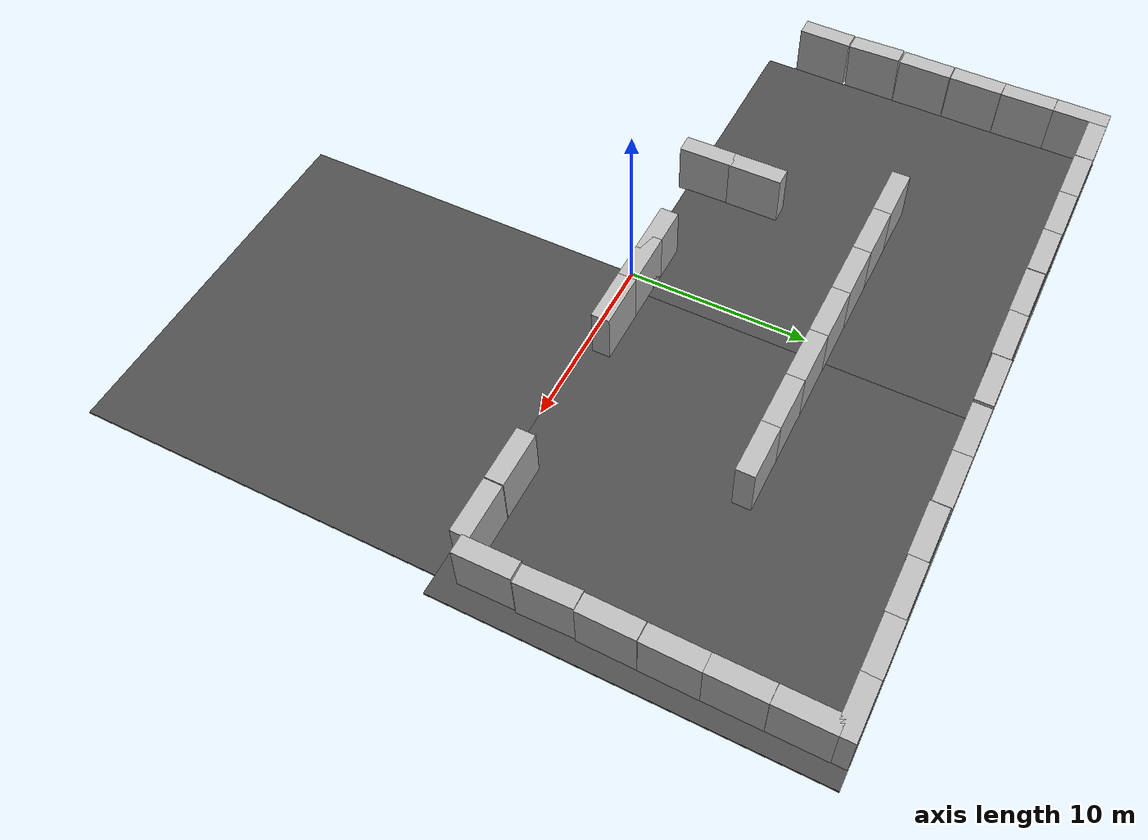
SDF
<sdf version="1.4">
 <world name="default">
  <model name="brick_box_3x1x3_23">
   <static>1</static>
   <link name="chassis">
    <pose>0 0 1.5 0 -0 0</pose>
    <collision name="collision"><geometry><box><size>3 1 3</size></box></geometry></collision>
    <visual name="visual">
     <geometry><mesh><uri>model://brick_box_3x1x3/meshes/simple_box.dae</uri><scale>3 1 3</scale></mesh></geometry>
     <material>
      <script>
       <uri>model://brick_box_3x1x3/materials/scripts</uri>
       <uri>model://brick_box_3x1x3/materials/textures</uri>
       <name>BrickBox/Diffuse</name>
      </script>
     </material>
    </visual>
    <velocity_decay><linear>0</linear><angular>0</angular></velocity_decay>
   </link>
   <pose>19.4 2.59654 0 0 0 -1.56237</pose>
  </model>
  <model name="brick_box_3x1x3_24">
   <static>1</static>
   <link name="chassis">
    <pose>0 0 1.5 0 -0 0</pose>
    <collision name="collision"><geometry><box><size>3 1 3</size></box></geometry></collision>
    <visual name="visual">
     <geometry><mesh><uri>model://brick_box_3x1x3/meshes/simple_box.dae</uri><scale>3 1 3</scale></mesh></geometry>
     <material>
      <script>
       <uri>model://brick_box_3x1x3/materials/scripts</uri>
       <uri>model://brick_box_3x1x3/materials/textures</uri>
       <name>BrickBox/Diffuse</name>
      </script>
     </material>
    </visual>
    <velocity_decay><linear>0</linear><angular>0</angular></velocity_decay>
   </link>
   <pose>19.4391 5.68211 -0 0 0 -1.5482</pose>
  </model>
  <model name="brick_box_3x1x3_26">
   <static>1</static>
   <link name="chassis">
    <pose>0 0 1.5 0 -0 0</pose>
    <collision name="collision"><geometry><box><size>3 1 3</size></box></geometry></collision>
    <visual name="visual">
     <geometry><mesh><uri>model://brick_box_3x1x3/meshes/simple_box.dae</uri><scale>3 1 3</scale></mesh></geometry>
     <material>
      <script>
       <uri>model://brick_box_3x1x3/materials/scripts</uri>
       <uri>model://brick_box_3x1x3/materials/textures</uri>
       <name>BrickBox/Diffuse</name>
      </script>
     </material>
    </visual>
    <velocity_decay><linear>0</linear><angular>0</angular></velocity_decay>
   </link>
   <pose>19.4846 8.70991 0 0 0 -1.57967</pose>
  </model>
  <model name="brick_box_3x1x3_27">
   <static>1</static>
   <link name="chassis">
    <pose>0 0 1.5 0 -0 0</pose>
    <collision name="collision"><geometry><box><size>3 1 3</size></box></geometry></collision>
    <visual name="visual">
     <geometry><mesh><uri>model://brick_box_3x1x3/meshes/simple_box.dae</uri><scale>3 1 3</scale></mesh></geometry>
     <material>
      <script>
       <uri>model://brick_box_3x1x3/materials/scripts</uri>
       <uri>model://brick_box_3x1x3/materials/textures</uri>
       <name>BrickBox/Diffuse</name>
      </script>
     </material>
    </visual>
    <velocity_decay><linear>0</linear><angular>0</angular></velocity_decay>
   </link>
   <pose>19.5171 11.7392 0 0 0 -1.57967</pose>
  </model>
  <model name="brick_box_3x1x3_28">
   <static>1</static>
   <link name="chassis">
    <pose>0 0 1.5 0 -0 0</pose>
    <collision name="collision"><geometry><box><size>3 1 3</size></box></geometry></collision>
    <visual name="visual">
     <geometry><mesh><uri>model://brick_box_3x1x3/meshes/simple_box.dae</uri><scale>3 1 3</scale></mesh></geometry>
     <material>
      <script>
       <uri>model://brick_box_3x1x3/materials/scripts</uri>
       <uri>model://brick_box_3x1x3/materials/textures</uri>
       <name>BrickBox/Diffuse</name>
      </script>
     </material>
    </visual>
    <velocity_decay><linear>0</linear><angular>0</angular></velocity_decay>
   </link>
   <pose>19.5317 14.7251 0 0 0 -1.57629</pose>
  </model>
  <model name="brick_box_3x1x3_29">
   <static>1</static>
   <link name="chassis">
    <pose>0 0 1.5 0 -0 0</pose>
    <collision name="collision"><geometry><box><size>3 1 3</size></box></geometry></collision>
    <visual name="visual">
     <geometry><mesh><uri>model://brick_box_3x1x3/meshes/simple_box.dae</uri><scale>3 1 3</scale></mesh></geometry>
     <material>
      <script>
       <uri>model://brick_box_3x1x3/materials/scripts</uri>
       <uri>model://brick_box_3x1x3/materials/textures</uri>
       <name>BrickBox/Diffuse</name>
      </script>
     </material>
    </visual>
    <velocity_decay><linear>0</linear><angular>0</angular></velocity_decay>
   </link>
   <pose>19.5375 17.7338 0 0 0 -1.5746</pose>
  </model>
  <model name="brick_box_3x1x3_30">
   <static>1</static>
   <link name="chassis">
    <pose>0 0 1.5 0 -0 0</pose>
    <collision name="collision"><geometry><box><size>3 1 3</size></box></geometry></collision>
    <visual name="visual">
     <geometry><mesh><uri>model://brick_box_3x1x3/meshes/simple_box.dae</uri><scale>3 1 3</scale></mesh></geometry>
     <material>
      <script>
       <uri>model://brick_box_3x1x3/materials/scripts</uri>
       <uri>model://brick_box_3x1x3/materials/textures</uri>
       <name>BrickBox/Diffuse</name>
      </script>
     </material>
    </visual>
    <velocity_decay><linear>0</linear><angular>0</angular></velocity_decay>
   </link>
   <pose>18.529 19.4736 0 0 -0 0</pose>
  </model>
  <model name="brick_box_3x1x3_31">
   <static>1</static>
   <link name="chassis">
    <pose>0 0 1.5 0 -0 0</pose>
    <collision name="collision"><geometry><box><size>3 1 3</size></box></geometry></collision>
    <visual name="visual">
     <geometry><mesh><uri>model://brick_box_3x1x3/meshes/simple_box.dae</uri><scale>3 1 3</scale></mesh></geometry>
     <material>
      <script>
       <uri>model://brick_box_3x1x3/materials/scripts</uri>
       <uri>model://brick_box_3x1x3/materials/textures</uri>
       <name>BrickBox/Diffuse</name>
      </script>
     </material>
    </visual>
    <velocity_decay><linear>0</linear><angular>0</angular></velocity_decay>
   </link>
   <pose>15.5483 19.4823 0 0 -0 0</pose>
  </model>
  <model name="brick_box_3x1x3_32">
   <static>1</static>
   <link name="chassis">
    <pose>0 0 1.5 0 -0 0</pose>
    <collision name="collision"><geometry><box><size>3 1 3</size></box></geometry></collision>
    <visual name="visual">
     <geometry><mesh><uri>model://brick_box_3x1x3/meshes/simple_box.dae</uri><scale>3 1 3</scale></mesh></geometry>
     <material>
      <script>
       <uri>model://brick_box_3x1x3/materials/scripts</uri>
       <uri>model://brick_box_3x1x3/materials/textures</uri>
       <name>BrickBox/Diffuse</name>
      </script>
     </material>
    </visual>
    <velocity_decay><linear>0</linear><angular>0</angular></velocity_decay>
   </link>
   <pose>12.5769 19.4539 0 0 -0 0</pose>
  </model>
  <model name="brick_box_3x1x3_33">
   <static>1</static>
   <link name="chassis">
    <pose>0 0 1.5 0 -0 0</pose>
    <collision name="collision"><geometry><box><size>3 1 3</size></box></geometry></collision>
    <visual name="visual">
     <geometry><mesh><uri>model://brick_box_3x1x3/meshes/simple_box.dae</uri><scale>3 1 3</scale></mesh></geometry>
     <material>
      <script>
       <uri>model://brick_box_3x1x3/materials/scripts</uri>
       <uri>model://brick_box_3x1x3/materials/textures</uri>
       <name>BrickBox/Diffuse</name>
      </script>
     </material>
    </visual>
    <velocity_decay><linear>0</linear><angular>0</angular></velocity_decay>
   </link>
   <pose>9.57621 19.4238 0 0 -0 0</pose>
  </model>
  <model name="brick_box_3x1x3_34">
   <static>1</static>
   <link name="chassis">
    <pose>0 0 1.5 0 -0 0</pose>
    <collision name="collision"><geometry><box><size>3 1 3</size></box></geometry></collision>
    <visual name="visual">
     <geometry><mesh><uri>model://brick_box_3x1x3/meshes/simple_box.dae</uri><scale>3 1 3</scale></mesh></geometry>
     <material>
      <script>
       <uri>model://brick_box_3x1x3/materials/scripts</uri>
       <uri>model://brick_box_3x1x3/materials/textures</uri>
       <name>BrickBox/Diffuse</name>
      </script>
     </material>
    </visual>
    <velocity_decay><linear>0</linear><angular>0</angular></velocity_decay>
   </link>
   <pose>6.55688 19.4922 0 0 -0 0</pose>
  </model>
  <model name="brick_box_3x1x3_35">
   <static>1</static>
   <link name="chassis">
    <pose>0 0 1.5 0 -0 0</pose>
    <collision name="collision"><geometry><box><size>3 1 3</size></box></geometry></collision>
    <visual name="visual">
     <geometry><mesh><uri>model://brick_box_3x1x3/meshes/simple_box.dae</uri><scale>3 1 3</scale></mesh></geometry>
     <material>
      <script>
       <uri>model://brick_box_3x1x3/materials/scripts</uri>
       <uri>model://brick_box_3x1x3/materials/textures</uri>
       <name>BrickBox/Diffuse</name>
      </script>
     </material>
    </visual>
    <velocity_decay><linear>0</linear><angular>0</angular></velocity_decay>
   </link>
   <pose>3.57711 19.4933 0 0 -0 0</pose>
  </model>
  <model name="brick_box_3x1x3_36">
   <static>1</static>
   <link name="chassis">
    <pose>0 0 1.5 0 -0 0</pose>
    <collision name="collision"><geometry><box><size>3 1 3</size></box></geometry></collision>
    <visual name="visual">
     <geometry><mesh><uri>model://brick_box_3x1x3/meshes/simple_box.dae</uri><scale>3 1 3</scale></mesh></geometry>
     <material>
      <script>
       <uri>model://brick_box_3x1x3/materials/scripts</uri>
       <uri>model://brick_box_3x1x3/materials/textures</uri>
       <name>BrickBox/Diffuse</name>
      </script>
     </material>
    </visual>
    <velocity_decay><linear>0</linear><angular>0</angular></velocity_decay>
   </link>
   <pose>0.42608 19.4917 0 0 -0 0</pose>
  </model>
  <model name="brick_box_3x1x3_37">
   <static>1</static>
   <link name="chassis">
    <pose>0 0 1.5 0 -0 0</pose>
    <collision name="collision"><geometry><box><size>3 1 3</size></box></geometry></collision>
    <visual name="visual">
     <geometry><mesh><uri>model://brick_box_3x1x3/meshes/simple_box.dae</uri><scale>3 1 3</scale></mesh></geometry>
     <material>
      <script>
       <uri>model://brick_box_3x1x3/materials/scripts</uri>
       <uri>model://brick_box_3x1x3/materials/textures</uri>
       <name>BrickBox/Diffuse</name>
      </script>
     </material>
    </visual>
    <velocity_decay><linear>0</linear><angular>0</angular></velocity_decay>
   </link>
   <pose>-2.5857 19.4247 0 0 -0 0</pose>
  </model>
  <model name="brick_box_3x1x3_38">
   <static>1</static>
   <link name="chassis">
    <pose>0 0 1.5 0 -0 0</pose>
    <collision name="collision"><geometry><box><size>3 1 3</size></box></geometry></collision>
    <visual name="visual">
     <geometry><mesh><uri>model://brick_box_3x1x3/meshes/simple_box.dae</uri><scale>3 1 3</scale></mesh></geometry>
     <material>
      <script>
       <uri>model://brick_box_3x1x3/materials/scripts</uri>
       <uri>model://brick_box_3x1x3/materials/textures</uri>
       <name>BrickBox/Diffuse</name>
      </script>
     </material>
    </visual>
    <velocity_decay><linear>0</linear><angular>0</angular></velocity_decay>
   </link>
   <pose>-5.55945 19.4107 0 0 -0 0</pose>
  </model>
  <model name="brick_box_3x1x3_39">
   <static>1</static>
   <link name="chassis">
    <pose>0 0 1.5 0 -0 0</pose>
    <collision name="collision"><geometry><box><size>3 1 3</size></box></geometry></collision>
    <visual name="visual">
     <geometry><mesh><uri>model://brick_box_3x1x3/meshes/simple_box.dae</uri><scale>3 1 3</scale></mesh></geometry>
     <material>
      <script>
       <uri>model://brick_box_3x1x3/materials/scripts</uri>
       <uri>model://brick_box_3x1x3/materials/textures</uri>
       <name>BrickBox/Diffuse</name>
      </script>
     </material>
    </visual>
    <velocity_decay><linear>0</linear><angular>0</angular></velocity_decay>
   </link>
   <pose>-8.59757 19.4323 0 0 -0 0</pose>
  </model>
  <model name="brick_box_3x1x3_40">
   <static>1</static>
   <link name="chassis">
    <pose>0 0 1.5 0 -0 0</pose>
    <collision name="collision"><geometry><box><size>3 1 3</size></box></geometry></collision>
    <visual name="visual">
     <geometry><mesh><uri>model://brick_box_3x1x3/meshes/simple_box.dae</uri><scale>3 1 3</scale></mesh></geometry>
     <material>
      <script>
       <uri>model://brick_box_3x1x3/materials/scripts</uri>
       <uri>model://brick_box_3x1x3/materials/textures</uri>
       <name>BrickBox/Diffuse</name>
      </script>
     </material>
    </visual>
    <velocity_decay><linear>0</linear><angular>0</angular></velocity_decay>
   </link>
   <pose>-11.5905 19.4476 0 0 -0 0</pose>
  </model>
  <model name="brick_box_3x1x3_41">
   <static>1</static>
   <link name="chassis">
    <pose>0 0 1.5 0 -0 0</pose>
    <collision name="collision"><geometry><box><size>3 1 3</size></box></geometry></collision>
    <visual name="visual">
     <geometry><mesh><uri>model://brick_box_3x1x3/meshes/simple_box.dae</uri><scale>3 1 3</scale></mesh></geometry>
     <material>
      <script>
       <uri>model://brick_box_3x1x3/materials/scripts</uri>
       <uri>model://brick_box_3x1x3/materials/textures</uri>
       <name>BrickBox/Diffuse</name>
      </script>
     </material>
    </visual>
    <velocity_decay><linear>0</linear><angular>0</angular></velocity_decay>
   </link>
   <pose>-14.5981 19.4562 0 0 -0 0</pose>
  </model>
  <model name="brick_box_3x1x3_42">
   <static>1</static>
   <link name="chassis">
    <pose>0 0 1.5 0 -0 0</pose>
    <collision name="collision"><geometry><box><size>3 1 3</size></box></geometry></collision>
    <visual name="visual">
     <geometry><mesh><uri>model://brick_box_3x1x3/meshes/simple_box.dae</uri><scale>3 1 3</scale></mesh></geometry>
     <material>
      <script>
       <uri>model://brick_box_3x1x3/materials/scripts</uri>
       <uri>model://brick_box_3x1x3/materials/textures</uri>
       <name>BrickBox/Diffuse</name>
      </script>
     </material>
    </visual>
    <velocity_decay><linear>0</linear><angular>0</angular></velocity_decay>
   </link>
   <pose>-17.6102 19.4715 0 0 -0 0</pose>
  </model>
  <model name="brick_box_3x1x3_43">
   <static>1</static>
   <link name="chassis">
    <pose>0 0 1.5 0 -0 0</pose>
    <collision name="collision"><geometry><box><size>3 1 3</size></box></geometry></collision>
    <visual name="visual">
     <geometry><mesh><uri>model://brick_box_3x1x3/meshes/simple_box.dae</uri><scale>3 1 3</scale></mesh></geometry>
     <material>
      <script>
       <uri>model://brick_box_3x1x3/materials/scripts</uri>
       <uri>model://brick_box_3x1x3/materials/textures</uri>
       <name>BrickBox/Diffuse</name>
      </script>
     </material>
    </visual>
    <velocity_decay><linear>0</linear><angular>0</angular></velocity_decay>
   </link>
   <pose>-19.4996 18.4581 0 0 0 -1.57477</pose>
  </model>
  <model name="brick_box_3x1x3_44">
   <static>1</static>
   <link name="chassis">
    <pose>0 0 1.5 0 -0 0</pose>
    <collision name="collision"><geometry><box><size>3 1 3</size></box></geometry></collision>
    <visual name="visual">
     <geometry><mesh><uri>model://brick_box_3x1x3/meshes/simple_box.dae</uri><scale>3 1 3</scale></mesh></geometry>
     <material>
      <script>
       <uri>model://brick_box_3x1x3/materials/scripts</uri>
       <uri>model://brick_box_3x1x3/materials/textures</uri>
       <name>BrickBox/Diffuse</name>
      </script>
     </material>
    </visual>
    <velocity_decay><linear>0</linear><angular>0</angular></velocity_decay>
   </link>
   <pose>-19.4839 15.4467 0 0 0 -1.56015</pose>
  </model>
  <model name="brick_box_3x1x3_45">
   <static>1</static>
   <link name="chassis">
    <pose>0 0 1.5 0 -0 0</pose>
    <collision name="collision"><geometry><box><size>3 1 3</size></box></geometry></collision>
    <visual name="visual">
     <geometry><mesh><uri>model://brick_box_3x1x3/meshes/simple_box.dae</uri><scale>3 1 3</scale></mesh></geometry>
     <material>
      <script>
       <uri>model://brick_box_3x1x3/materials/scripts</uri>
       <uri>model://brick_box_3x1x3/materials/textures</uri>
       <name>BrickBox/Diffuse</name>
      </script>
     </material>
    </visual>
    <velocity_decay><linear>0</linear><angular>0</angular></velocity_decay>
   </link>
   <pose>-19.4776 12.4354 0 0 0 -1.57529</pose>
  </model>
  <model name="brick_box_3x1x3_46">
   <static>1</static>
   <link name="chassis">
    <pose>0 0 1.5 0 -0 0</pose>
    <collision name="collision"><geometry><box><size>3 1 3</size></box></geometry></collision>
    <visual name="visual">
     <geometry><mesh><uri>model://brick_box_3x1x3/meshes/simple_box.dae</uri><scale>3 1 3</scale></mesh></geometry>
     <material>
      <script>
       <uri>model://brick_box_3x1x3/materials/scripts</uri>
       <uri>model://brick_box_3x1x3/materials/textures</uri>
       <name>BrickBox/Diffuse</name>
      </script>
     </material>
    </visual>
    <velocity_decay><linear>0</linear><angular>0</angular></velocity_decay>
   </link>
   <pose>-19.481 9.39648 0 0 0 -1.57601</pose>
  </model>
  <model name="brick_box_3x1x3_47">
   <static>1</static>
   <link name="chassis">
    <pose>0 0 1.5 0 -0 0</pose>
    <collision name="collision"><geometry><box><size>3 1 3</size></box></geometry></collision>
    <visual name="visual">
     <geometry><mesh><uri>model://brick_box_3x1x3/meshes/simple_box.dae</uri><scale>3 1 3</scale></mesh></geometry>
     <material>
      <script>
       <uri>model://brick_box_3x1x3/materials/scripts</uri>
       <uri>model://brick_box_3x1x3/materials/textures</uri>
       <name>BrickBox/Diffuse</name>
      </script>
     </material>
    </visual>
    <velocity_decay><linear>0</linear><angular>0</angular></velocity_decay>
   </link>
   <pose>-19.5051 6.37919 -4e-06 0 0.026989 -1.5771</pose>
  </model>
  <model name="brick_box_3x1x3_48">
   <static>1</static>
   <link name="chassis">
    <pose>0 0 1.5 0 -0 0</pose>
    <collision name="collision"><geometry><box><size>3 1 3</size></box></geometry></collision>
    <visual name="visual">
     <geometry><mesh><uri>model://brick_box_3x1x3/meshes/simple_box.dae</uri><scale>3 1 3</scale></mesh></geometry>
     <material>
      <script>
       <uri>model://brick_box_3x1x3/materials/scripts</uri>
       <uri>model://brick_box_3x1x3/materials/textures</uri>
       <name>BrickBox/Diffuse</name>
      </script>
     </material>
    </visual>
    <velocity_decay><linear>0</linear><angular>0</angular></velocity_decay>
   </link>
   <pose>-19.4922 3.24294 0 0 0 -1.58107</pose>
  </model>
  <model name="brick_box_3x1x3_65">
   <static>1</static>
   <link name="chassis">
    <pose>0 0 1.5 0 -0 0</pose>
    <collision name="collision"><geometry><box><size>3 1 3</size></box></geometry></collision>
    <visual name="visual">
     <geometry><mesh><uri>model://brick_box_3x1x3/meshes/simple_box.dae</uri><scale>3 1 3</scale></mesh></geometry>
     <material>
      <script>
       <uri>model://brick_box_3x1x3/materials/scripts</uri>
       <uri>model://brick_box_3x1x3/materials/textures</uri>
       <name>BrickBox/Diffuse</name>
      </script>
     </material>
    </visual>
    <velocity_decay><linear>0</linear><angular>0</angular></velocity_decay>
   </link>
   <pose>9 11 0 0 -0 0</pose>
  </model>
  <model name="brick_box_3x1x3_66">
   <static>1</static>
   <link name="chassis">
    <pose>0 0 1.5 0 -0 0</pose>
    <collision name="collision"><geometry><box><size>3 1 3</size></box></geometry></collision>
    <visual name="visual">
     <geometry><mesh><uri>model://brick_box_3x1x3/meshes/simple_box.dae</uri><scale>3 1 3</scale></mesh></geometry>
     <material>
      <script>
       <uri>model://brick_box_3x1x3/materials/scripts</uri>
       <uri>model://brick_box_3x1x3/materials/textures</uri>
       <name>BrickBox/Diffuse</name>
      </script>
     </material>
    </visual>
    <velocity_decay><linear>0</linear><angular>0</angular></velocity_decay>
   </link>
   <pose>6 11 0 0 -0 0</pose>
  </model>
  <model name="brick_box_3x1x3_67">
   <static>1</static>
   <link name="chassis">
    <pose>0 0 1.5 0 -0 0</pose>
    <collision name="collision"><geometry><box><size>3 1 3</size></box></geometry></collision>
    <visual name="visual">
     <geometry><mesh><uri>model://brick_box_3x1x3/meshes/simple_box.dae</uri><scale>3 1 3</scale></mesh></geometry>
     <material>
      <script>
       <uri>model://brick_box_3x1x3/materials/scripts</uri>
       <uri>model://brick_box_3x1x3/materials/textures</uri>
       <name>BrickBox/Diffuse</name>
      </script>
     </material>
    </visual>
    <velocity_decay><linear>0</linear><angular>0</angular></velocity_decay>
   </link>
   <pose>3 11 0 0 -0 0</pose>
  </model>
  <model name="brick_box_3x1x3_68">
   <static>1</static>
   <link name="chassis">
    <pose>0 0 1.5 0 -0 0</pose>
    <collision name="collision"><geometry><box><size>3 1 3</size></box></geometry></collision>
    <visual name="visual">
     <geometry><mesh><uri>model://brick_box_3x1x3/meshes/simple_box.dae</uri><scale>3 1 3</scale></mesh></geometry>
     <material>
      <script>
       <uri>model://brick_box_3x1x3/materials/scripts</uri>
       <uri>model://brick_box_3x1x3/materials/textures</uri>
       <name>BrickBox/Diffuse</name>
      </script>
     </material>
    </visual>
    <velocity_decay><linear>0</linear><angular>0</angular></velocity_decay>
   </link>
   <pose>0 11 0 0 -0 0</pose>
  </model>
  <model name="brick_box_3x1x3_69">
   <static>1</static>
   <link name="chassis">
    <pose>0 0 1.5 0 -0 0</pose>
    <collision name="collision"><geometry><box><size>3 1 3</size></box></geometry></collision>
    <visual name="visual">
     <geometry><mesh><uri>model://brick_box_3x1x3/meshes/simple_box.dae</uri><scale>3 1 3</scale></mesh></geometry>
     <material>
      <script>
       <uri>model://brick_box_3x1x3/materials/scripts</uri>
       <uri>model://brick_box_3x1x3/materials/textures</uri>
       <name>BrickBox/Diffuse</name>
      </script>
     </material>
    </visual>
    <velocity_decay><linear>0</linear><angular>0</angular></velocity_decay>
   </link>
   <pose>-3 11 0 0 -0 0</pose>
  </model>
  <model name="brick_box_3x1x3_70">
   <static>1</static>
   <link name="chassis">
    <pose>0 0 1.5 0 -0 0</pose>
    <collision name="collision"><geometry><box><size>3 1 3</size></box></geometry></collision>
    <visual name="visual">
     <geometry><mesh><uri>model://brick_box_3x1x3/meshes/simple_box.dae</uri><scale>3 1 3</scale></mesh></geometry>
     <material>
      <script>
       <uri>model://brick_box_3x1x3/materials/scripts</uri>
       <uri>model://brick_box_3x1x3/materials/textures</uri>
       <name>BrickBox/Diffuse</name>
      </script>
     </material>
    </visual>
    <velocity_decay><linear>0</linear><angular>0</angular></velocity_decay>
   </link>
   <pose>-6 11 0 0 -0 0</pose>
  </model>
  <model name="brick_box_3x1x3_71">
   <static>1</static>
   <link name="chassis">
    <pose>0 0 1.5 0 -0 0</pose>
    <collision name="collision"><geometry><box><size>3 1 3</size></box></geometry></collision>
    <visual name="visual">
     <geometry><mesh><uri>model://brick_box_3x1x3/meshes/simple_box.dae</uri><scale>3 1 3</scale></mesh></geometry>
     <material>
      <script>
       <uri>model://brick_box_3x1x3/materials/scripts</uri>
       <uri>model://brick_box_3x1x3/materials/textures</uri>
       <name>BrickBox/Diffuse</name>
      </script>
     </material>
    </visual>
    <velocity_decay><linear>0</linear><angular>0</angular></velocity_decay>
   </link>
   <pose>-9 11 0 0 -0 0</pose>
  </model>
  <model name="brick_box_3x1x3_15">
   <static>1</static>
   <link name="chassis">
    <pose>0 0 1.5 0 -0 0</pose>
    <collision name="collision"><geometry><box><size>3 1 3</size></box></geometry></collision>
    <visual name="visual">
     <geometry><mesh><uri>model://brick_box_3x1x3/meshes/simple_box.dae</uri><scale>3 1 3</scale></mesh></geometry>
     <material>
      <script>
       <uri>model://brick_box_3x1x3/materials/scripts</uri>
       <uri>model://brick_box_3x1x3/materials/textures</uri>
       <name>BrickBox/Diffuse</name>
      </script>
     </material>
    </visual>
    <velocity_decay><linear>0</linear><angular>0</angular></velocity_decay>
   </link>
   <pose>-7.44707 1.02573 -0 0 0 -1.55554</pose>
  </model>
  <model name="brick_box_3x1x3_17">
   <static>1</static>
   <link name="chassis">
    <pose>0 0 1.5 0 -0 0</pose>
    <collision name="collision"><geometry><box><size>3 1 3</size></box></geometry></collision>
    <visual name="visual">
     <geometry><mesh><uri>model://brick_box_3x1x3/meshes/simple_box.dae</uri><scale>3 1 3</scale></mesh></geometry>
     <material>
      <script>
       <uri>model://brick_box_3x1x3/materials/scripts</uri>
       <uri>model://brick_box_3x1x3/materials/textures</uri>
       <name>BrickBox/Diffuse</name>
      </script>
     </material>
    </visual>
    <velocity_decay><linear>0</linear><angular>0</angular></velocity_decay>
   </link>
   <pose>-7.46193 3.91417 0 0 0 -1.5649</pose>
  </model>
  <model name="brick_box_3x1x3_56">
   <static>1</static>
   <link name="chassis">
    <pose>0 0 1.5 0 -0 0</pose>
    <collision name="collision"><geometry><box><size>3 1 3</size></box></geometry></collision>
    <visual name="visual">
     <geometry><mesh><uri>model://brick_box_3x1x3/meshes/simple_box.dae</uri><scale>3 1 3</scale></mesh></geometry>
     <material>
      <script>
       <uri>model://brick_box_3x1x3/materials/scripts</uri>
       <uri>model://brick_box_3x1x3/materials/textures</uri>
       <name>BrickBox/Diffuse</name>
      </script>
     </material>
    </visual>
    <velocity_decay><linear>0</linear><angular>0</angular></velocity_decay>
   </link>
   <pose>17.4882 1 0 0 -0 0</pose>
  </model>
  <model name="brick_box_3x1x3_57">
   <static>1</static>
   <link name="chassis">
    <pose>0 0 1.5 0 -0 0</pose>
    <collision name="collision"><geometry><box><size>3 1 3</size></box></geometry></collision>
    <visual name="visual">
     <geometry><mesh><uri>model://brick_box_3x1x3/meshes/simple_box.dae</uri><scale>3 1 3</scale></mesh></geometry>
     <material>
      <script>
       <uri>model://brick_box_3x1x3/materials/scripts</uri>
       <uri>model://brick_box_3x1x3/materials/textures</uri>
       <name>BrickBox/Diffuse</name>
      </script>
     </material>
    </visual>
    <velocity_decay><linear>0</linear><angular>0</angular></velocity_decay>
   </link>
   <pose>14.4437 1 0 0 -0 0</pose>
  </model>
  <model name="asphalt_plane">
   <static>1</static>
   <link name="link">
    <collision name="collision"><geometry><box><size>20 20 0.1</size></box></geometry></collision>
    <visual name="visual">
     <cast_shadows>0</cast_shadows>
     <geometry><box><size>20 20 0.1</size></box></geometry>
     <material>
      <script>
       <uri>model://asphalt_plane/materials/scripts</uri>
       <uri>model://asphalt_plane/materials/textures</uri>
       <name>vrc/asphalt</name>
      </script>
     </material>
    </visual>
    <velocity_decay><linear>0</linear><angular>0</angular></velocity_decay>
   </link>
   <pose>10 -10 0 0 -0 0</pose>
  </model>
  <model name="asphalt_plane_1">
   <static>1</static>
   <link name="link">
    <collision name="collision"><geometry><box><size>20 20 0.1</size></box></geometry></collision>
    <visual name="visual">
     <cast_shadows>0</cast_shadows>
     <geometry><box><size>20 20 0.1</size></box></geometry>
     <material>
      <script>
       <uri>model://asphalt_plane/materials/scripts</uri>
       <uri>model://asphalt_plane/materials/textures</uri>
       <name>vrc/asphalt</name>
      </script>
     </material>
    </visual>
    <velocity_decay><linear>0</linear><angular>0</angular></velocity_decay>
   </link>
   <pose>11 10 0 0 -0 0</pose>
  </model>
  <model name="asphalt_plane_2">
   <static>1</static>
   <link name="link">
    <collision name="collision"><geometry><box><size>20 20 0.1</size></box></geometry></collision>
    <visual name="visual">
     <cast_shadows>0</cast_shadows>
     <geometry><box><size>20 20 0.1</size></box></geometry>
     <material>
      <script>
       <uri>model://asphalt_plane/materials/scripts</uri>
       <uri>model://asphalt_plane/materials/textures</uri>
       <name>vrc/asphalt</name>
      </script>
     </material>
    </visual>
    <velocity_decay><linear>0</linear><angular>0</angular></velocity_decay>
   </link>
   <pose>-9 10 0 0 -0 0</pose>
  </model>
  <model name="brick_box_3x1x3_25">
   <static>1</static>
   <link name="chassis">
    <pose>0 0 1.5 0 -0 0</pose>
    <collision name="collision"><geometry><box><size>3 1 3</size></box></geometry></collision>
    <visual name="visual">
     <geometry><mesh><uri>model://brick_box_3x1x3/meshes/simple_box.dae</uri><scale>3 1 3</scale></mesh></geometry>
     <material>
      <script>
       <uri>model://brick_box_3x1x3/materials/scripts</uri>
       <uri>model://brick_box_3x1x3/materials/textures</uri>
       <name>BrickBox/Diffuse</name>
      </script>
     </material>
    </visual>
    <velocity_decay><linear>0</linear><angular>0</angular></velocity_decay>
   </link>
   <pose>4 1 0 0 -0 0</pose>
  </model>
  <model name="brick_box_3x1x3_75">
   <static>1</static>
   <link name="chassis">
    <pose>0 0 1.5 0 -0 0</pose>
    <collision name="collision"><geometry><box><size>3 1 3</size></box></geometry></collision>
    <visual name="visual">
     <geometry><mesh><uri>model://brick_box_3x1x3/meshes/simple_box.dae</uri><scale>3 1 3</scale></mesh></geometry>
     <material>
      <script>
       <uri>model://brick_box_3x1x3/materials/scripts</uri>
       <uri>model://brick_box_3x1x3/materials/textures</uri>
       <name>BrickBox/Diffuse</name>
      </script>
     </material>
    </visual>
    <velocity_decay><linear>0</linear><angular>0</angular></velocity_decay>
   </link>
   <pose>1 1 0 0 -0 0</pose>
  </model>
  <model name="brick_box_3x1x3_76">
   <static>1</static>
   <link name="chassis">
    <pose>0 0 1.5 0 -0 0</pose>
    <collision name="collision"><geometry><box><size>3 1 3</size></box></geometry></collision>
    <visual name="visual">
     <geometry><mesh><uri>model://brick_box_3x1x3/meshes/simple_box.dae</uri><scale>3 1 3</scale></mesh></geometry>
     <material>
      <script>
       <uri>model://brick_box_3x1x3/materials/scripts</uri>
       <uri>model://brick_box_3x1x3/materials/textures</uri>
       <name>BrickBox/Diffuse</name>
      </script>
     </material>
    </visual>
    <velocity_decay><linear>0</linear><angular>0</angular></velocity_decay>
   </link>
   <pose>-1 1 0 0 -0 0</pose>
  </model>
 </world>
</sdf>
